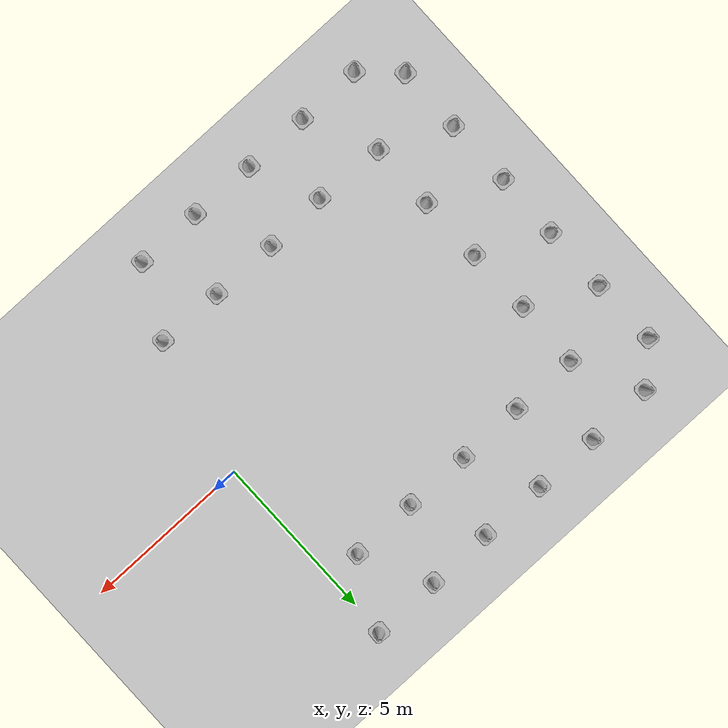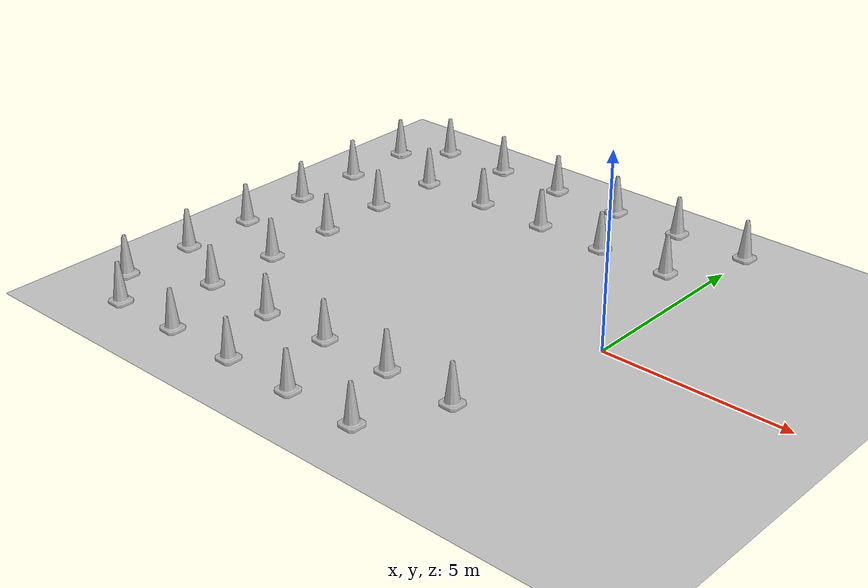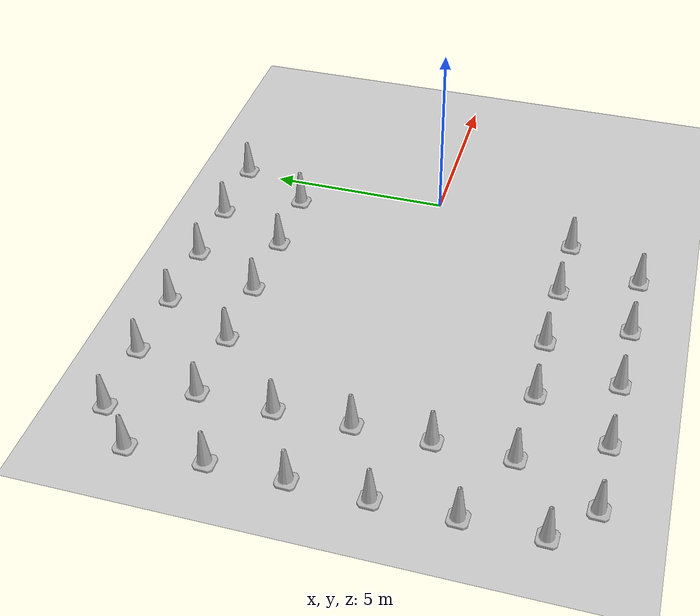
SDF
<sdf version="1.7">
 <world name="default">
  <model name="ground_plane">
   <static>1</static>
   <link name="link">
    <collision name="collision">
     <geometry><plane><normal>0 0 1</normal><size>100 100</size></plane></geometry>
     <surface><friction><ode><mu>100</mu><mu2>50</mu2></ode></friction></surface>
    </collision>
    <visual name="visual">
     <cast_shadows>0</cast_shadows>
     <geometry><plane><normal>0 0 1</normal><size>100 100</size></plane></geometry>
     <material>
      <script><uri>file://media/materials/scripts/gazebo.material</uri><name>Gazebo/Grey</name></script>
     </material>
    </visual>
    <velocity_decay><linear>0</linear><angular>0</angular></velocity_decay>
   </link>
  </model>
  <model name="Construction Cone_0">
   <link name="link">
    <collision name="collision">
     <geometry>
      <mesh><scale>10 10 10</scale><uri>model://construction_cone/meshes/construction_cone.dae</uri></mesh>
     </geometry>
    </collision>
    <visual name="visual">
     <geometry>
      <mesh><scale>10 10 10</scale><uri>model://construction_cone/meshes/construction_cone.dae</uri></mesh>
     </geometry>
    </visual>
    <velocity_decay><linear>0</linear><angular>0</angular></velocity_decay>
    <inertial>
     <inertia><ixx>1</ixx><ixy>0</ixy><ixz>0</ixz><iyy>1</iyy><iyz>0</iyz><izz>1</izz></inertia>
     <mass>1</mass>
    </inertial>
   </link>
   <pose>0.010199 5.9935 0.05 0 -0 -0.049854</pose>
   <static>0</static>
  </model>
  <model name="Construction Cone_clone_3">
   <link name="link">
    <collision name="collision">
     <geometry>
      <mesh><scale>10 10 10</scale><uri>model://construction_cone/meshes/construction_cone.dae</uri></mesh>
     </geometry>
    </collision>
    <visual name="visual">
     <geometry>
      <mesh><scale>10 10 10</scale><uri>model://construction_cone/meshes/construction_cone.dae</uri></mesh>
     </geometry>
    </visual>
    <velocity_decay><linear>0</linear><angular>0</angular></velocity_decay>
    <inertial>
     <inertia><ixx>1</ixx><ixy>0</ixy><ixz>0</ixz><iyy>1</iyy><iyz>0</iyz><izz>1</izz></inertia>
     <mass>1</mass>
    </inertial>
   </link>
   <pose>-2.05161 -6.0305 0.049169 -0.000193 6e-06 -0.028992</pose>
   <static>0</static>
  </model>
  <model name="Construction Cone_clone_4">
   <link name="link">
    <collision name="collision">
     <geometry>
      <mesh><scale>10 10 10</scale><uri>model://construction_cone/meshes/construction_cone.dae</uri></mesh>
     </geometry>
    </collision>
    <visual name="visual">
     <geometry>
      <mesh><scale>10 10 10</scale><uri>model://construction_cone/meshes/construction_cone.dae</uri></mesh>
     </geometry>
    </visual>
    <velocity_decay><linear>0</linear><angular>0</angular></velocity_decay>
    <inertial>
     <inertia><ixx>1</ixx><ixy>0</ixy><ixz>0</ixz><iyy>1</iyy><iyz>0</iyz><izz>1</izz></inertia>
     <mass>1</mass>
    </inertial>
   </link>
   <pose>-4.02984 -6.01901 0.049169 -0.000193 6e-06 -0.028992</pose>
   <static>0</static>
  </model>
  <model name="Construction Cone_0_clone_3_clone_1">
   <link name="link">
    <collision name="collision">
     <geometry>
      <mesh><scale>10 10 10</scale><uri>model://construction_cone/meshes/construction_cone.dae</uri></mesh>
     </geometry>
    </collision>
    <visual name="visual">
     <geometry>
      <mesh><scale>10 10 10</scale><uri>model://construction_cone/meshes/construction_cone.dae</uri></mesh>
     </geometry>
    </visual>
    <velocity_decay><linear>0</linear><angular>0</angular></velocity_decay>
    <inertial>
     <inertia><ixx>1</ixx><ixy>0</ixy><ixz>0</ixz><iyy>1</iyy><iyz>0</iyz><izz>1</izz></inertia>
     <mass>1</mass>
    </inertial>
   </link>
   <pose>-4.00215 5.97928 0.05 0 -0 -0.022775</pose>
   <static>0</static>
  </model>
  <model name="Construction Cone_0_clone_3_clone_2">
   <link name="link">
    <collision name="collision">
     <geometry>
      <mesh><scale>10 10 10</scale><uri>model://construction_cone/meshes/construction_cone.dae</uri></mesh>
     </geometry>
    </collision>
    <visual name="visual">
     <geometry>
      <mesh><scale>10 10 10</scale><uri>model://construction_cone/meshes/construction_cone.dae</uri></mesh>
     </geometry>
    </visual>
    <velocity_decay><linear>0</linear><angular>0</angular></velocity_decay>
    <inertial>
     <inertia><ixx>1</ixx><ixy>0</ixy><ixz>0</ixz><iyy>1</iyy><iyz>0</iyz><izz>1</izz></inertia>
     <mass>1</mass>
    </inertial>
   </link>
   <pose>-2.03972 5.98973 0.05 0 -0 -0.022775</pose>
   <static>0</static>
  </model>
  <model name="Construction Cone_clone_2_clone_10">
   <link name="link">
    <collision name="collision">
     <geometry>
      <mesh><scale>10 10 10</scale><uri>model://construction_cone/meshes/construction_cone.dae</uri></mesh>
     </geometry>
    </collision>
    <visual name="visual">
     <geometry>
      <mesh><scale>10 10 10</scale><uri>model://construction_cone/meshes/construction_cone.dae</uri></mesh>
     </geometry>
    </visual>
    <velocity_decay><linear>0</linear><angular>0</angular></velocity_decay>
    <inertial>
     <inertia><ixx>1</ixx><ixy>0</ixy><ixz>0</ixz><iyy>1</iyy><iyz>0</iyz><izz>1</izz></inertia>
     <mass>1</mass>
    </inertial>
   </link>
   <pose>-6.01834 5.99275 0.05 0 -1e-06 -0.028992</pose>
   <static>0</static>
  </model>
  <model name="Construction Cone_clone_2_clone_11">
   <link name="link">
    <collision name="collision">
     <geometry>
      <mesh><scale>10 10 10</scale><uri>model://construction_cone/meshes/construction_cone.dae</uri></mesh>
     </geometry>
    </collision>
    <visual name="visual">
     <geometry>
      <mesh><scale>10 10 10</scale><uri>model://construction_cone/meshes/construction_cone.dae</uri></mesh>
     </geometry>
    </visual>
    <velocity_decay><linear>0</linear><angular>0</angular></velocity_decay>
    <inertial>
     <inertia><ixx>1</ixx><ixy>0</ixy><ixz>0</ixz><iyy>1</iyy><iyz>0</iyz><izz>1</izz></inertia>
     <mass>1</mass>
    </inertial>
   </link>
   <pose>-7.98665 6.01626 0.05 0 -1e-06 -0.028992</pose>
   <static>0</static>
  </model>
  <model name="Construction Cone_clone_2_clone_12">
   <link name="link">
    <collision name="collision">
     <geometry>
      <mesh><scale>10 10 10</scale><uri>model://construction_cone/meshes/construction_cone.dae</uri></mesh>
     </geometry>
    </collision>
    <visual name="visual">
     <geometry>
      <mesh><scale>10 10 10</scale><uri>model://construction_cone/meshes/construction_cone.dae</uri></mesh>
     </geometry>
    </visual>
    <velocity_decay><linear>0</linear><angular>0</angular></velocity_decay>
    <inertial>
     <inertia><ixx>1</ixx><ixy>0</ixy><ixz>0</ixz><iyy>1</iyy><iyz>0</iyz><izz>1</izz></inertia>
     <mass>1</mass>
    </inertial>
   </link>
   <pose>-9.97239 5.9809 0.05 0 -1e-06 -0.028992</pose>
   <static>0</static>
  </model>
  <model name="Construction Cone_clone_2_clone_13">
   <link name="link">
    <collision name="collision">
     <geometry>
      <mesh><scale>10 10 10</scale><uri>model://construction_cone/meshes/construction_cone.dae</uri></mesh>
     </geometry>
    </collision>
    <visual name="visual">
     <geometry>
      <mesh><scale>10 10 10</scale><uri>model://construction_cone/meshes/construction_cone.dae</uri></mesh>
     </geometry>
    </visual>
    <velocity_decay><linear>0</linear><angular>0</angular></velocity_decay>
    <inertial>
     <inertia><ixx>1</ixx><ixy>0</ixy><ixz>0</ixz><iyy>1</iyy><iyz>0</iyz><izz>1</izz></inertia>
     <mass>1</mass>
    </inertial>
   </link>
   <pose>-11.0075 4.97612 0.05 0 -1e-06 -0.028992</pose>
   <static>0</static>
  </model>
  <model name="Construction Cone_clone_2_clone_14">
   <link name="link">
    <collision name="collision">
     <geometry>
      <mesh><scale>10 10 10</scale><uri>model://construction_cone/meshes/construction_cone.dae</uri></mesh>
     </geometry>
    </collision>
    <visual name="visual">
     <geometry>
      <mesh><scale>10 10 10</scale><uri>model://construction_cone/meshes/construction_cone.dae</uri></mesh>
     </geometry>
    </visual>
    <velocity_decay><linear>0</linear><angular>0</angular></velocity_decay>
    <inertial>
     <inertia><ixx>1</ixx><ixy>0</ixy><ixz>0</ixz><iyy>1</iyy><iyz>0</iyz><izz>1</izz></inertia>
     <mass>1</mass>
    </inertial>
   </link>
   <pose>-10.9735 2.9783 0.05 0 -1e-06 -0.028992</pose>
   <static>0</static>
  </model>
  <model name="Construction Cone_clone_2_clone_15">
   <link name="link">
    <collision name="collision">
     <geometry>
      <mesh><scale>10 10 10</scale><uri>model://construction_cone/meshes/construction_cone.dae</uri></mesh>
     </geometry>
    </collision>
    <visual name="visual">
     <geometry>
      <mesh><scale>10 10 10</scale><uri>model://construction_cone/meshes/construction_cone.dae</uri></mesh>
     </geometry>
    </visual>
    <velocity_decay><linear>0</linear><angular>0</angular></velocity_decay>
    <inertial>
     <inertia><ixx>1</ixx><ixy>0</ixy><ixz>0</ixz><iyy>1</iyy><iyz>0</iyz><izz>1</izz></inertia>
     <mass>1</mass>
    </inertial>
   </link>
   <pose>-10.9743 0.996016 0.05 0 -1e-06 -0.028992</pose>
   <static>0</static>
  </model>
  <model name="Construction Cone_clone_2_clone_16">
   <link name="link">
    <collision name="collision">
     <geometry>
      <mesh><scale>10 10 10</scale><uri>model://construction_cone/meshes/construction_cone.dae</uri></mesh>
     </geometry>
    </collision>
    <visual name="visual">
     <geometry>
      <mesh><scale>10 10 10</scale><uri>model://construction_cone/meshes/construction_cone.dae</uri></mesh>
     </geometry>
    </visual>
    <velocity_decay><linear>0</linear><angular>0</angular></velocity_decay>
    <inertial>
     <inertia><ixx>1</ixx><ixy>0</ixy><ixz>0</ixz><iyy>1</iyy><iyz>0</iyz><izz>1</izz></inertia>
     <mass>1</mass>
    </inertial>
   </link>
   <pose>-10.9991 -0.983874 0.05 0 -1e-06 -0.028992</pose>
   <static>0</static>
  </model>
  <model name="Construction Cone_clone_2_clone_17">
   <link name="link">
    <collision name="collision">
     <geometry>
      <mesh><scale>10 10 10</scale><uri>model://construction_cone/meshes/construction_cone.dae</uri></mesh>
     </geometry>
    </collision>
    <visual name="visual">
     <geometry>
      <mesh><scale>10 10 10</scale><uri>model://construction_cone/meshes/construction_cone.dae</uri></mesh>
     </geometry>
    </visual>
    <velocity_decay><linear>0</linear><angular>0</angular></velocity_decay>
    <inertial>
     <inertia><ixx>1</ixx><ixy>0</ixy><ixz>0</ixz><iyy>1</iyy><iyz>0</iyz><izz>1</izz></inertia>
     <mass>1</mass>
    </inertial>
   </link>
   <pose>-10.9729 -3.00576 0.05 0 -1e-06 -0.028992</pose>
   <static>0</static>
  </model>
  <model name="Construction Cone_clone_2_clone_18">
   <link name="link">
    <collision name="collision">
     <geometry>
      <mesh><scale>10 10 10</scale><uri>model://construction_cone/meshes/construction_cone.dae</uri></mesh>
     </geometry>
    </collision>
    <visual name="visual">
     <geometry>
      <mesh><scale>10 10 10</scale><uri>model://construction_cone/meshes/construction_cone.dae</uri></mesh>
     </geometry>
    </visual>
    <velocity_decay><linear>0</linear><angular>0</angular></velocity_decay>
    <inertial>
     <inertia><ixx>1</ixx><ixy>0</ixy><ixz>0</ixz><iyy>1</iyy><iyz>0</iyz><izz>1</izz></inertia>
     <mass>1</mass>
    </inertial>
   </link>
   <pose>-10.971 -4.98824 0.05 0 -1e-06 -0.028992</pose>
   <static>0</static>
  </model>
  <model name="Construction Cone_clone_2_clone_19">
   <link name="link">
    <collision name="collision">
     <geometry>
      <mesh><scale>10 10 10</scale><uri>model://construction_cone/meshes/construction_cone.dae</uri></mesh>
     </geometry>
    </collision>
    <visual name="visual">
     <geometry>
      <mesh><scale>10 10 10</scale><uri>model://construction_cone/meshes/construction_cone.dae</uri></mesh>
     </geometry>
    </visual>
    <velocity_decay><linear>0</linear><angular>0</angular></velocity_decay>
    <inertial>
     <inertia><ixx>1</ixx><ixy>0</ixy><ixz>0</ixz><iyy>1</iyy><iyz>0</iyz><izz>1</izz></inertia>
     <mass>1</mass>
    </inertial>
   </link>
   <pose>-9.95237 -5.97275 0.05 0 -1e-06 -0.028992</pose>
   <static>0</static>
  </model>
  <model name="Construction Cone_clone_2_clone_20">
   <link name="link">
    <collision name="collision">
     <geometry>
      <mesh><scale>10 10 10</scale><uri>model://construction_cone/meshes/construction_cone.dae</uri></mesh>
     </geometry>
    </collision>
    <visual name="visual">
     <geometry>
      <mesh><scale>10 10 10</scale><uri>model://construction_cone/meshes/construction_cone.dae</uri></mesh>
     </geometry>
    </visual>
    <velocity_decay><linear>0</linear><angular>0</angular></velocity_decay>
    <inertial>
     <inertia><ixx>1</ixx><ixy>0</ixy><ixz>0</ixz><iyy>1</iyy><iyz>0</iyz><izz>1</izz></inertia>
     <mass>1</mass>
    </inertial>
   </link>
   <pose>-8.00714 -5.97215 0.05 0 -1e-06 -0.028992</pose>
   <static>0</static>
  </model>
  <model name="Construction Cone_clone_2_clone_21">
   <link name="link">
    <collision name="collision">
     <geometry>
      <mesh><scale>10 10 10</scale><uri>model://construction_cone/meshes/construction_cone.dae</uri></mesh>
     </geometry>
    </collision>
    <visual name="visual">
     <geometry>
      <mesh><scale>10 10 10</scale><uri>model://construction_cone/meshes/construction_cone.dae</uri></mesh>
     </geometry>
    </visual>
    <velocity_decay><linear>0</linear><angular>0</angular></velocity_decay>
    <inertial>
     <inertia><ixx>1</ixx><ixy>0</ixy><ixz>0</ixz><iyy>1</iyy><iyz>0</iyz><izz>1</izz></inertia>
     <mass>1</mass>
    </inertial>
   </link>
   <pose>-6.02068 -5.98811 0.05 0 -1e-06 -0.028992</pose>
   <static>0</static>
  </model>
  <model name="Construction Cone_1_clone">
   <link name="link">
    <collision name="collision">
     <geometry>
      <mesh><scale>10 10 10</scale><uri>model://construction_cone/meshes/construction_cone.dae</uri></mesh>
     </geometry>
    </collision>
    <visual name="visual">
     <geometry>
      <mesh><scale>10 10 10</scale><uri>model://construction_cone/meshes/construction_cone.dae</uri></mesh>
     </geometry>
    </visual>
    <velocity_decay><linear>0</linear><angular>0</angular></velocity_decay>
    <inertial>
     <inertia><ixx>1</ixx><ixy>0</ixy><ixz>0</ixz><iyy>1</iyy><iyz>0</iyz><izz>1</izz></inertia>
     <mass>1</mass>
    </inertial>
   </link>
   <pose>-6.88237 -4.02377 0.05 0 0 -0.029351</pose>
   <static>0</static>
  </model>
  <model name="Construction Cone_1_clone_0">
   <link name="link">
    <collision name="collision">
     <geometry>
      <mesh><scale>10 10 10</scale><uri>model://construction_cone/meshes/construction_cone.dae</uri></mesh>
     </geometry>
    </collision>
    <visual name="visual">
     <geometry>
      <mesh><scale>10 10 10</scale><uri>model://construction_cone/meshes/construction_cone.dae</uri></mesh>
     </geometry>
    </visual>
    <velocity_decay><linear>0</linear><angular>0</angular></velocity_decay>
    <inertial>
     <inertia><ixx>1</ixx><ixy>0</ixy><ixz>0</ixz><iyy>1</iyy><iyz>0</iyz><izz>1</izz></inertia>
     <mass>1</mass>
    </inertial>
   </link>
   <pose>-8.98907 -3.91988 0.05 0 0 -0.029351</pose>
   <static>0</static>
  </model>
  <model name="Construction Cone_1_clone_1">
   <link name="link">
    <collision name="collision">
     <geometry>
      <mesh><scale>10 10 10</scale><uri>model://construction_cone/meshes/construction_cone.dae</uri></mesh>
     </geometry>
    </collision>
    <visual name="visual">
     <geometry>
      <mesh><scale>10 10 10</scale><uri>model://construction_cone/meshes/construction_cone.dae</uri></mesh>
     </geometry>
    </visual>
    <velocity_decay><linear>0</linear><angular>0</angular></velocity_decay>
    <inertial>
     <inertia><ixx>1</ixx><ixy>0</ixy><ixz>0</ixz><iyy>1</iyy><iyz>0</iyz><izz>1</izz></inertia>
     <mass>1</mass>
    </inertial>
   </link>
   <pose>-8.98728 -1.92979 0.05 0 0 -0.029351</pose>
   <static>0</static>
  </model>
  <model name="Construction Cone_1_clone_2">
   <link name="link">
    <collision name="collision">
     <geometry>
      <mesh><scale>10 10 10</scale><uri>model://construction_cone/meshes/construction_cone.dae</uri></mesh>
     </geometry>
    </collision>
    <visual name="visual">
     <geometry>
      <mesh><scale>10 10 10</scale><uri>model://construction_cone/meshes/construction_cone.dae</uri></mesh>
     </geometry>
    </visual>
    <velocity_decay><linear>0</linear><angular>0</angular></velocity_decay>
    <inertial>
     <inertia><ixx>1</ixx><ixy>0</ixy><ixz>0</ixz><iyy>1</iyy><iyz>0</iyz><izz>1</izz></inertia>
     <mass>1</mass>
    </inertial>
   </link>
   <pose>-8.99756 0.033566 0.05 0 0 -0.029351</pose>
   <static>0</static>
  </model>
  <model name="Construction Cone_1_clone_3">
   <link name="link">
    <collision name="collision">
     <geometry>
      <mesh><scale>10 10 10</scale><uri>model://construction_cone/meshes/construction_cone.dae</uri></mesh>
     </geometry>
    </collision>
    <visual name="visual">
     <geometry>
      <mesh><scale>10 10 10</scale><uri>model://construction_cone/meshes/construction_cone.dae</uri></mesh>
     </geometry>
    </visual>
    <velocity_decay><linear>0</linear><angular>0</angular></velocity_decay>
    <inertial>
     <inertia><ixx>1</ixx><ixy>0</ixy><ixz>0</ixz><iyy>1</iyy><iyz>0</iyz><izz>1</izz></inertia>
     <mass>1</mass>
    </inertial>
   </link>
   <pose>-4.99522 -3.95496 0.05 0 0 -0.029351</pose>
   <static>0</static>
  </model>
  <model name="Construction Cone_1_clone_4">
   <link name="link">
    <collision name="collision">
     <geometry>
      <mesh><scale>10 10 10</scale><uri>model://construction_cone/meshes/construction_cone.dae</uri></mesh>
     </geometry>
    </collision>
    <visual name="visual">
     <geometry>
      <mesh><scale>10 10 10</scale><uri>model://construction_cone/meshes/construction_cone.dae</uri></mesh>
     </geometry>
    </visual>
    <velocity_decay><linear>0</linear><angular>0</angular></velocity_decay>
    <inertial>
     <inertia><ixx>1</ixx><ixy>0</ixy><ixz>0</ixz><iyy>1</iyy><iyz>0</iyz><izz>1</izz></inertia>
     <mass>1</mass>
    </inertial>
   </link>
   <pose>-2.98336 -3.98409 0.05 0 0 -0.029351</pose>
   <static>0</static>
  </model>
  <model name="Construction Cone_1_clone_5">
   <link name="link">
    <collision name="collision">
     <geometry>
      <mesh><scale>10 10 10</scale><uri>model://construction_cone/meshes/construction_cone.dae</uri></mesh>
     </geometry>
    </collision>
    <visual name="visual">
     <geometry>
      <mesh><scale>10 10 10</scale><uri>model://construction_cone/meshes/construction_cone.dae</uri></mesh>
     </geometry>
    </visual>
    <velocity_decay><linear>0</linear><angular>0</angular></velocity_decay>
    <inertial>
     <inertia><ixx>1</ixx><ixy>0</ixy><ixz>0</ixz><iyy>1</iyy><iyz>0</iyz><izz>1</izz></inertia>
     <mass>1</mass>
    </inertial>
   </link>
   <pose>-1.00479 -4.02211 0.05 0 0 -0.029351</pose>
   <static>0</static>
  </model>
  <model name="Construction Cone_1_clone_18">
   <link name="link">
    <collision name="collision">
     <geometry>
      <mesh><scale>10 10 10</scale><uri>model://construction_cone/meshes/construction_cone.dae</uri></mesh>
     </geometry>
    </collision>
    <visual name="visual">
     <geometry>
      <mesh><scale>10 10 10</scale><uri>model://construction_cone/meshes/construction_cone.dae</uri></mesh>
     </geometry>
    </visual>
    <velocity_decay><linear>0</linear><angular>0</angular></velocity_decay>
    <inertial>
     <inertia><ixx>1</ixx><ixy>0</ixy><ixz>0</ixz><iyy>1</iyy><iyz>0</iyz><izz>1</izz></inertia>
     <mass>1</mass>
    </inertial>
   </link>
   <pose>-1.01806 3.97845 0.05 0 0 -0.029351</pose>
   <static>0</static>
  </model>
  <model name="Construction Cone_1_clone_19">
   <link name="link">
    <collision name="collision">
     <geometry>
      <mesh><scale>10 10 10</scale><uri>model://construction_cone/meshes/construction_cone.dae</uri></mesh>
     </geometry>
    </collision>
    <visual name="visual">
     <geometry>
      <mesh><scale>10 10 10</scale><uri>model://construction_cone/meshes/construction_cone.dae</uri></mesh>
     </geometry>
    </visual>
    <velocity_decay><linear>0</linear><angular>0</angular></velocity_decay>
    <inertial>
     <inertia><ixx>1</ixx><ixy>0</ixy><ixz>0</ixz><iyy>1</iyy><iyz>0</iyz><izz>1</izz></inertia>
     <mass>1</mass>
    </inertial>
   </link>
   <pose>-3.02139 3.95597 0.05 0 0 -0.029351</pose>
   <static>0</static>
  </model>
  <model name="Construction Cone_1_clone_20">
   <link name="link">
    <collision name="collision">
     <geometry>
      <mesh><scale>10 10 10</scale><uri>model://construction_cone/meshes/construction_cone.dae</uri></mesh>
     </geometry>
    </collision>
    <visual name="visual">
     <geometry>
      <mesh><scale>10 10 10</scale><uri>model://construction_cone/meshes/construction_cone.dae</uri></mesh>
     </geometry>
    </visual>
    <velocity_decay><linear>0</linear><angular>0</angular></velocity_decay>
    <inertial>
     <inertia><ixx>1</ixx><ixy>0</ixy><ixz>0</ixz><iyy>1</iyy><iyz>0</iyz><izz>1</izz></inertia>
     <mass>1</mass>
    </inertial>
   </link>
   <pose>-4.99919 3.98594 0.05 0 0 -0.029351</pose>
   <static>0</static>
  </model>
  <model name="Construction Cone_1_clone_21">
   <link name="link">
    <collision name="collision">
     <geometry>
      <mesh><scale>10 10 10</scale><uri>model://construction_cone/meshes/construction_cone.dae</uri></mesh>
     </geometry>
    </collision>
    <visual name="visual">
     <geometry>
      <mesh><scale>10 10 10</scale><uri>model://construction_cone/meshes/construction_cone.dae</uri></mesh>
     </geometry>
    </visual>
    <velocity_decay><linear>0</linear><angular>0</angular></velocity_decay>
    <inertial>
     <inertia><ixx>1</ixx><ixy>0</ixy><ixz>0</ixz><iyy>1</iyy><iyz>0</iyz><izz>1</izz></inertia>
     <mass>1</mass>
    </inertial>
   </link>
   <pose>-6.99805 3.97691 0.05 0 0 -0.029351</pose>
   <static>0</static>
  </model>
  <model name="Construction Cone_1_clone_22">
   <link name="link">
    <collision name="collision">
     <geometry>
      <mesh><scale>10 10 10</scale><uri>model://construction_cone/meshes/construction_cone.dae</uri></mesh>
     </geometry>
    </collision>
    <visual name="visual">
     <geometry>
      <mesh><scale>10 10 10</scale><uri>model://construction_cone/meshes/construction_cone.dae</uri></mesh>
     </geometry>
    </visual>
    <velocity_decay><linear>0</linear><angular>0</angular></velocity_decay>
    <inertial>
     <inertia><ixx>1</ixx><ixy>0</ixy><ixz>0</ixz><iyy>1</iyy><iyz>0</iyz><izz>1</izz></inertia>
     <mass>1</mass>
    </inertial>
   </link>
   <pose>-8.98755 3.99053 0.05 0 0 -0.029351</pose>
   <static>0</static>
  </model>
  <model name="Construction Cone_1_clone_23">
   <link name="link">
    <collision name="collision">
     <geometry>
      <mesh><scale>10 10 10</scale><uri>model://construction_cone/meshes/construction_cone.dae</uri></mesh>
     </geometry>
    </collision>
    <visual name="visual">
     <geometry>
      <mesh><scale>10 10 10</scale><uri>model://construction_cone/meshes/construction_cone.dae</uri></mesh>
     </geometry>
    </visual>
    <velocity_decay><linear>0</linear><angular>0</angular></velocity_decay>
    <inertial>
     <inertia><ixx>1</ixx><ixy>0</ixy><ixz>0</ixz><iyy>1</iyy><iyz>0</iyz><izz>1</izz></inertia>
     <mass>1</mass>
    </inertial>
   </link>
   <pose>-9.03254 2.00028 0.05 0 0 -0.029351</pose>
   <static>0</static>
  </model>
 </world>
</sdf>
